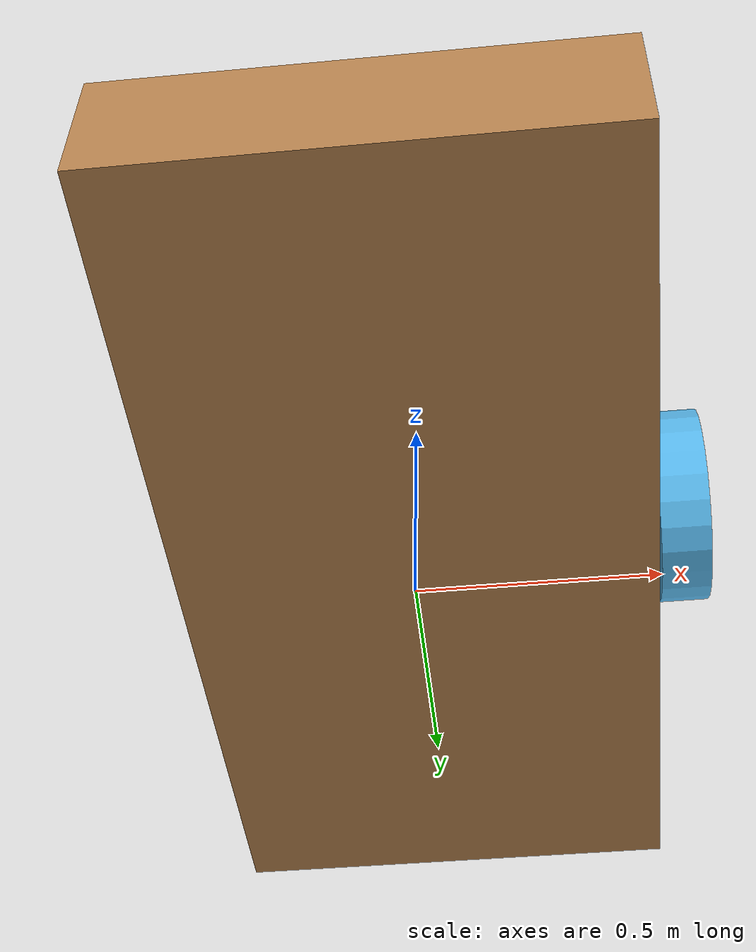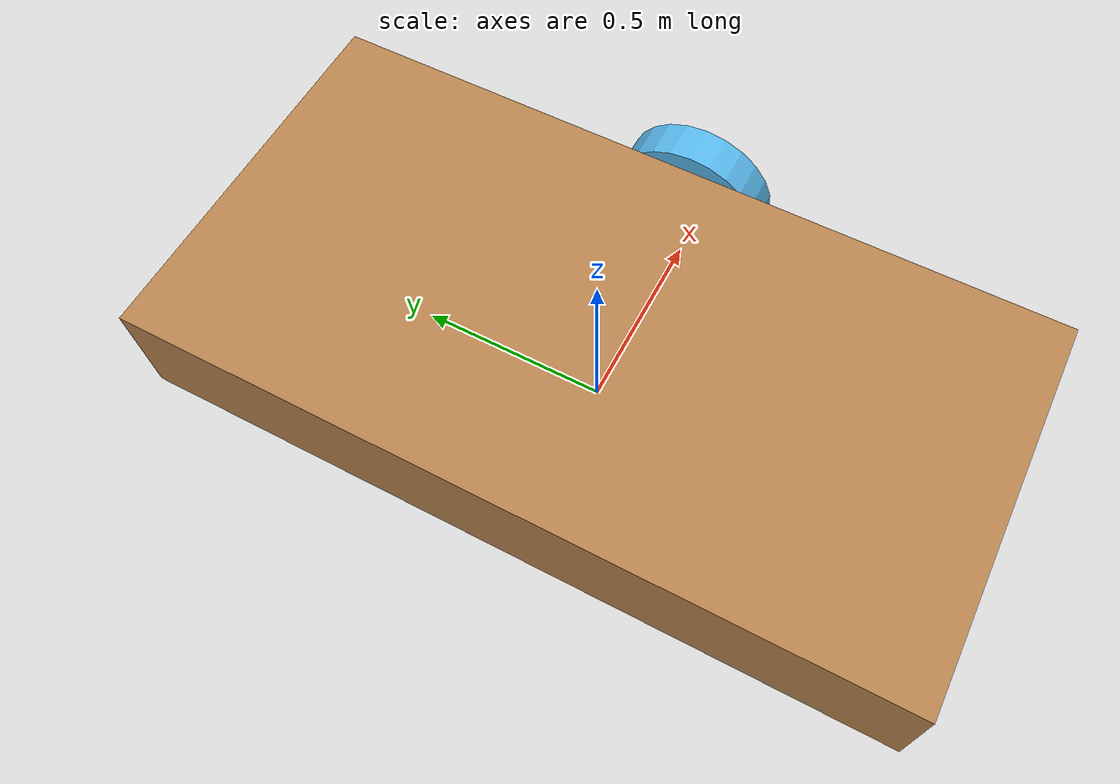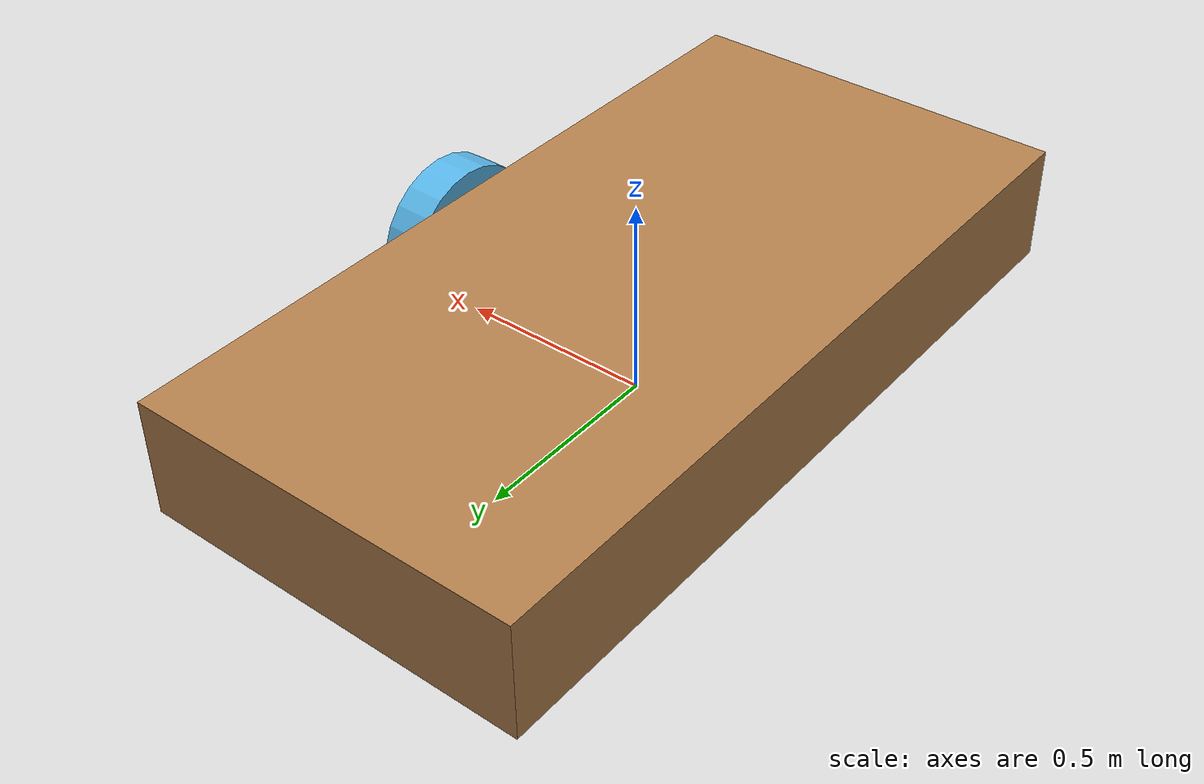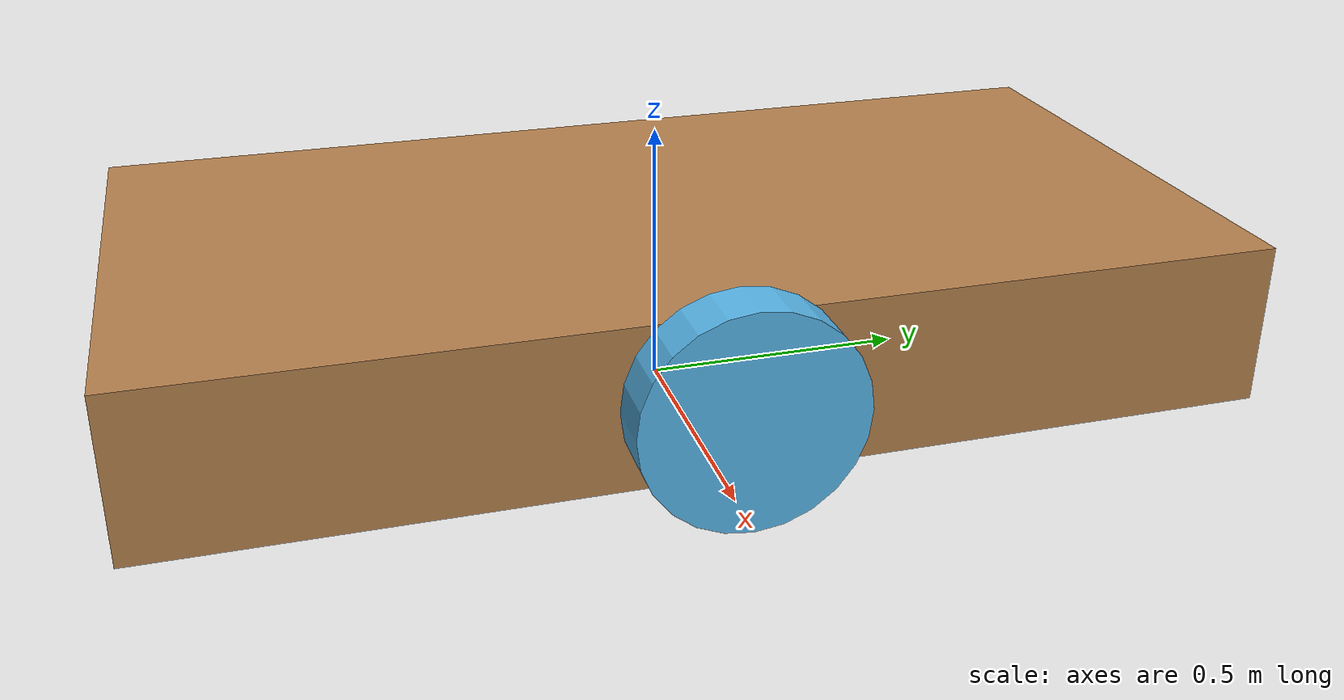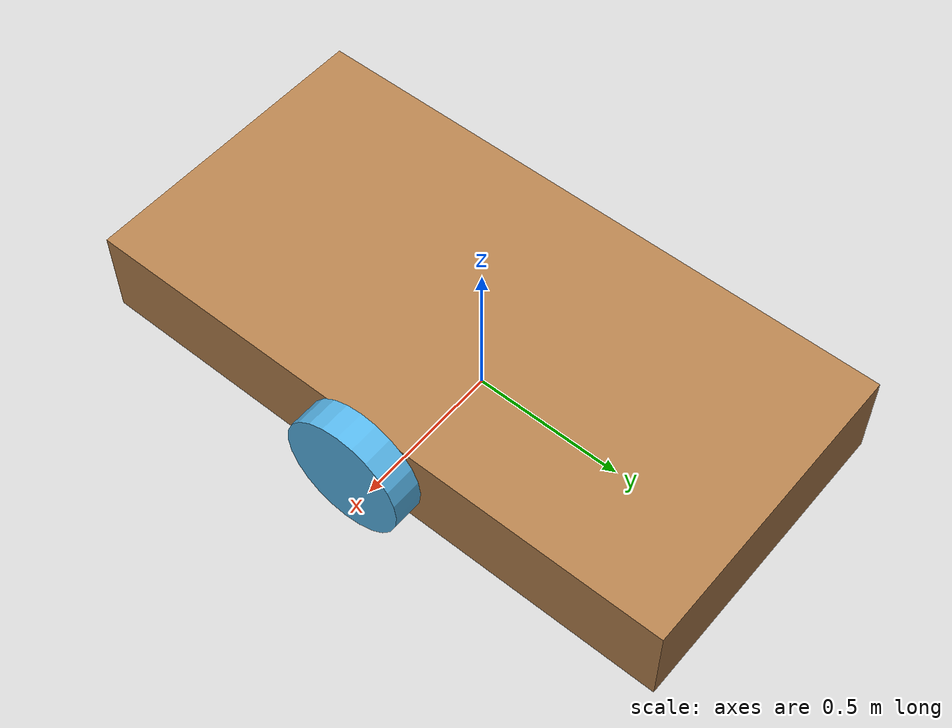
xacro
<?xml version="1.0"?>
<robot name="rbo" xmlns:xacro="http://www.ros.org/wiki/xacro">
    <!-- variable -->
    <xacro:property name="PI" value="3.1415926"/>
    <xacro:property name="car_width" value="1.0"/>
    <xacro:property name="car_length" value="2.0"/>
    <xacro:property name="car_height" value="0.3"/>
    <xacro:property name="wheel_length" value="0.1"/>
    <xacro:property name="wheel_radius" value="0.2"/>
    <xacro:property name="wheel_origin_xyz" value="0.0 0.0 0.0"/>
    <xacro:property name="wheel_origin_rpy" value="0.0 ${PI/2} 0.0"/>

    <!-- macro -->
    <xacro:macro name="default_inertial" params="mass">
        <inertial>
            <mass value="${mass}" />
            <inertia ixx="1.0" ixy="0.0" ixz="0.0" iyy="1.0" iyz="0.0" izz="1.0" />
        </inertial>
    </xacro:macro>

    <xacro:macro name="box_geometry" params="width length height">
        <geometry>
            <box size="${width} ${length} ${height}"/>
        </geometry>
    </xacro:macro>

    <xacro:macro name="cylinder_geometry" params="length radius">
        <geometry>
            <cylinder length="${length}" radius="${radius}"/>
        </geometry>
    </xacro:macro>

    <xacro:macro name="default_origin" params="xyz rpyaw">
        <origin xyz="${xyz}" rpy="${rpyaw}"/>
    </xacro:macro>

    <!-- links -->
    <link name="car_link">
        <visual>
            <xacro:box_geometry width="${car_width}" length="${car_length}" height="${car_height}"/>
        </visual>
        <collision>
            <xacro:box_geometry width="${car_width}" length="${car_length}" height="${car_height}"/>
        </collision>
        <xacro:default_inertial mass="5.0"/>
    </link>

    <link name="wheel">
        <visual>
            <xacro:cylinder_geometry length="${wheel_length}" radius="${wheel_radius}"/>
            <xacro:default_origin xyz="${wheel_origin_xyz}" rpyaw="${wheel_origin_rpy}" />
        </visual>
        <collision>
            <xacro:cylinder_geometry length="${wheel_length}" radius="${wheel_radius}"/>
            <xacro:default_origin xyz="${wheel_origin_xyz}" rpyaw="${wheel_origin_rpy}" />
        </collision>
        <xacro:default_inertial mass="0.2"/>
    </link>

    <!-- joints -->
    <joint name="car_base_wheel" type="continuous">
        <origin xyz="${(wheel_length+car_width)/2.0} 0.0 0.0" rpy="0.0 0.0 0.0"/>
        <parent link="car_link"/>
        <child link="wheel"/>
        <axis xyz="0.0 1.0 0.0"/>
    </joint>

    <!-- base_link -->
    <link name="base_link"/>
    <joint name="base_link_car" type="fixed">
        <origin xyz="0.0 0.0 ${wheel_radius}" rpy="0.0 0.0 0.0"/>
        <parent link="base_link"/>
        <child link="car_link"/>
    </joint>

<!-- gazebo -->
<gazebo reference="car_link">
    <material>Gazebo/WoodFloor</material>
    <mu1>0.5</mu1>
    <mu2>0.5</mu2>
</gazebo>

</robot>
